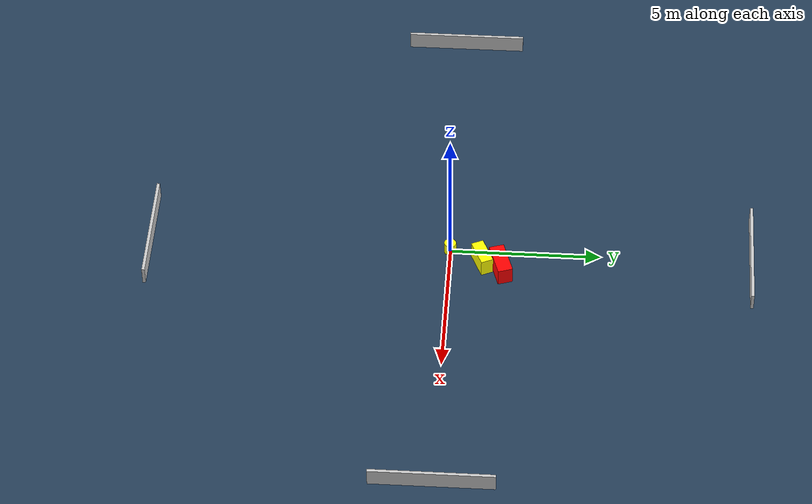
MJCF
<?xml version="1.0" ?>
<mujoco model="generated_environment">
  <option timestep="0.01" integrator="RK4" cone="elliptic"/>
  <default>
    <geom density="1"/>
  </default>
  <asset>
    <texture builtin="gradient" height="3072" name="skybox" rgb1="0.3 0.5 0.7" rgb2="0 0 0" type="skybox" width="512"/>
    <texture builtin="checker" height="300" name="groundplane" rgb1="0.2 0.3 0.4" rgb2="0.1 0.2 0.3" type="2d" width="300"/>
    <material name="groundplane" reflectance="0.2" texrepeat="5 5" texture="groundplane"/>
  </asset>
  <worldbody>
    <light dir="0 0 -1" directional="true" pos="0 0 1.5"/>
    <geom condim="3" friction="0.5 0.005 0.001" material="groundplane" name="floor" pos="0 0 0" size="0 0 0.05" type="plane"/>
    <body name="walls">
      <geom name="wall_1" condim="4" pos="-10.0 0.0 0.3" rgba="0.800000011920929 0.800000011920929 0.800000011920929 1.0" size="0.05 2.0 0.3" type="box"/>
      <geom name="wall_2" condim="4" pos="10.0 0.0 0.3" rgba="0.800000011920929 0.800000011920929 0.800000011920929 1.0" size="0.05 2.0 0.3" type="box"/>
      <geom name="wall_3" condim="4" pos="0.0 -10.0 0.3" rgba="0.800000011920929 0.800000011920929 0.800000011920929 1.0" size="2.0 0.05 0.3" type="box"/>
      <geom name="wall_4" condim="4" pos="0.0 10.0 0.3" rgba="0.800000011920929 0.800000011920929 0.800000011920929 1.0" size="2.0 0.05 0.3" type="box"/>
    </body>
    <body name="robot">
      <joint name="joint_x" type="slide" pos="0 0 0" axis="1 0 0"/>
      <joint name="joint_y" type="slide" pos="0 0 0" axis="0 1 0"/>
      <geom name="robot" type="cylinder" pos="0.0 0.0 0.2" size="0.2 0.2 0.0" mass="5.0" friction="1.0 0.005 0.0001" condim="4" rgba="1.0 1.0 0.0 1.0"/>
    </body>
    <body name="obstacle_1_movable">
      <geom name="obstacle_1_movable" condim="4" pos="0.5184791033579632 1.085852558440342 0.3" euler="0 0 114.00230909343358" friction="0.0 0.005 0.001" rgba="1.0 1.0 0.0 1.0" size="0.20825780292370313 0.4650602688072431 0.3" type="box" mass="0.1"/>
      <joint type="free"/>
    </body>
    <body name="obstacle_2_static">
      <geom name="obstacle_2_static" condim="4" pos="0.7839114366475767 1.7176867038145647 0.3" euler="0 0 287.8214167986042" friction="0.0 0.005 0.001" rgba="1.0 0.0 0.0 1.0" size="0.24881596774480882 0.5728284307601376 0.3" type="box"/>
    </body>
  </worldbody>
  <actuator>
    <motor name="actuator_x" joint="joint_x" gear="1" ctrlrange="-1 1"/>
    <motor name="actuator_y" joint="joint_y" gear="1" ctrlrange="-1 1"/>
  </actuator>
</mujoco>
